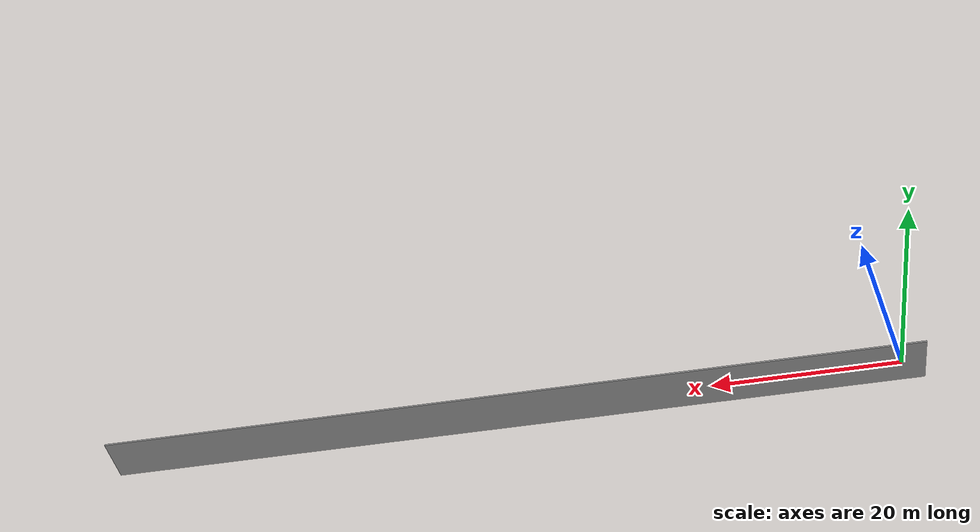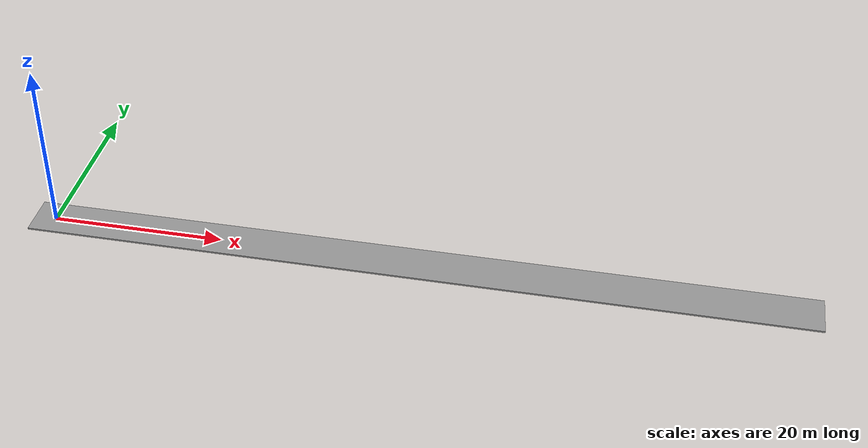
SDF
<?xml version='1.0'?>
<sdf version='1.4'>
  <model name='dyros_map'>
    <link name='Wall_0'>
      <collision name='Wall_0_Collision'>
        <geometry>
          <box>
            <size>90 5 0.2</size>
          </box>
        </geometry>
        <pose>0 0 0.1 0 -0 0</pose>
      </collision>
      <visual name='Wall_0_Visual'>
        <pose>0 0 0.1 0 -0 0</pose>
        <geometry>
          <box>
            <size>90 5 0.2</size>
          </box>
        </geometry>
        <material>
          <script>
            <uri>file://media/materials/scripts/gazebo.material</uri>
            <name>Gazebo/Grey</name>
          </script>
        </material>
      </visual>
      <velocity_decay>
        <linear>0</linear>
        <angular>0</angular>
      </velocity_decay>
      <pose>42.5 0 0 0 -0 0</pose>
    </link>
    <static>1</static>
  </model>
</sdf>
